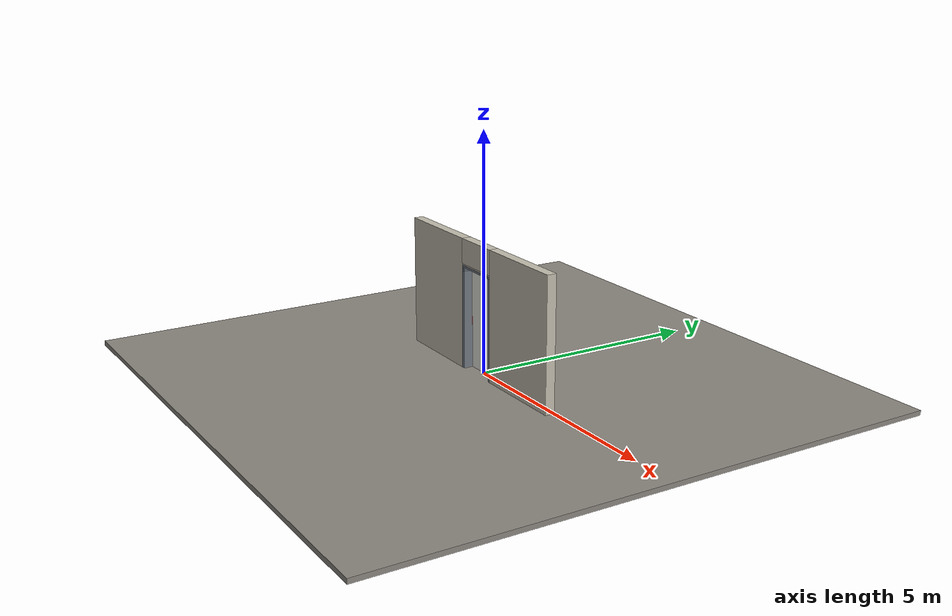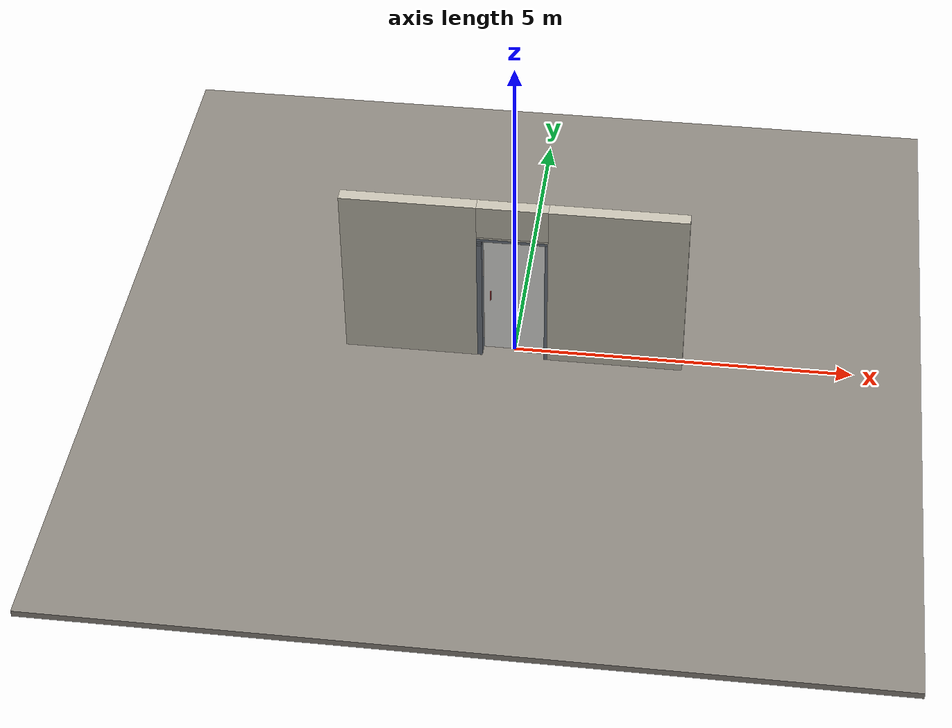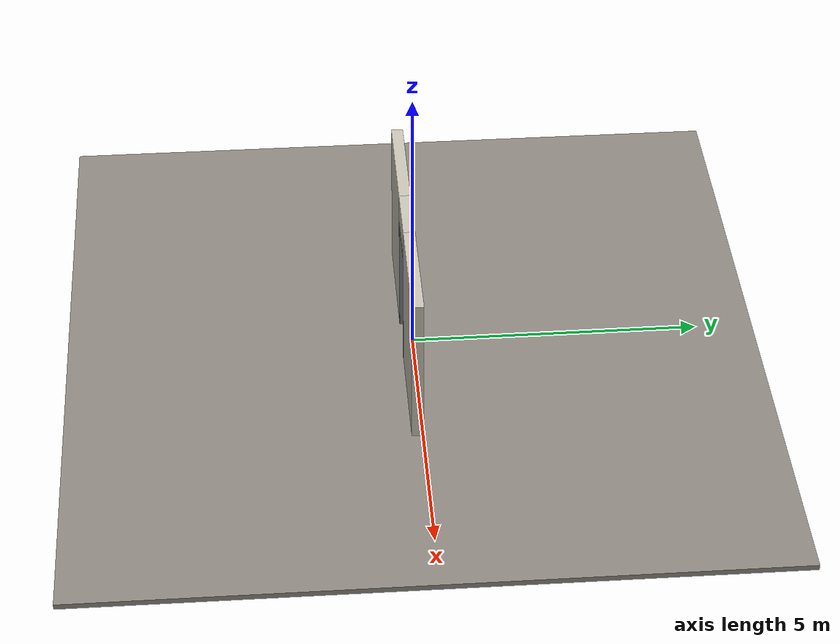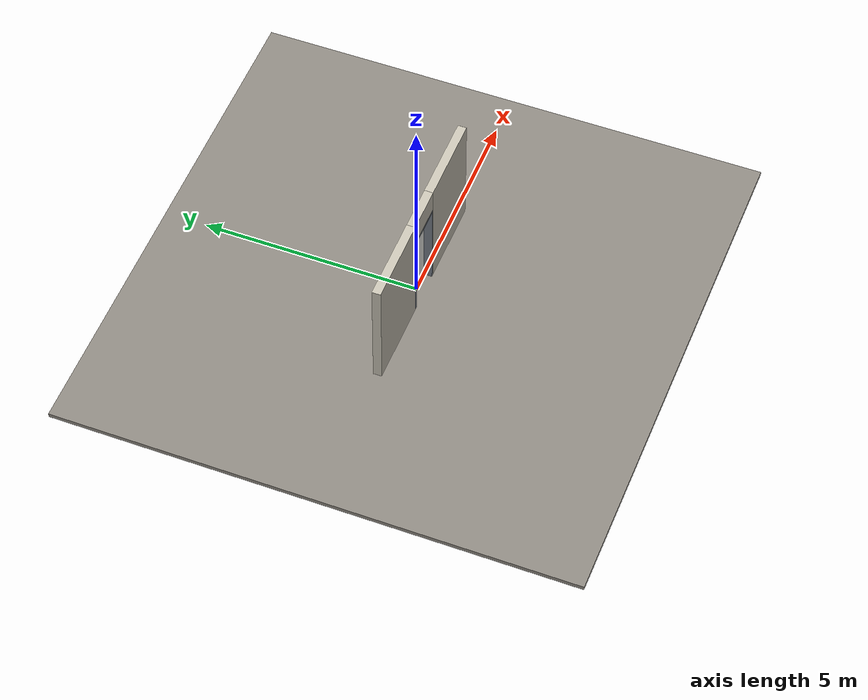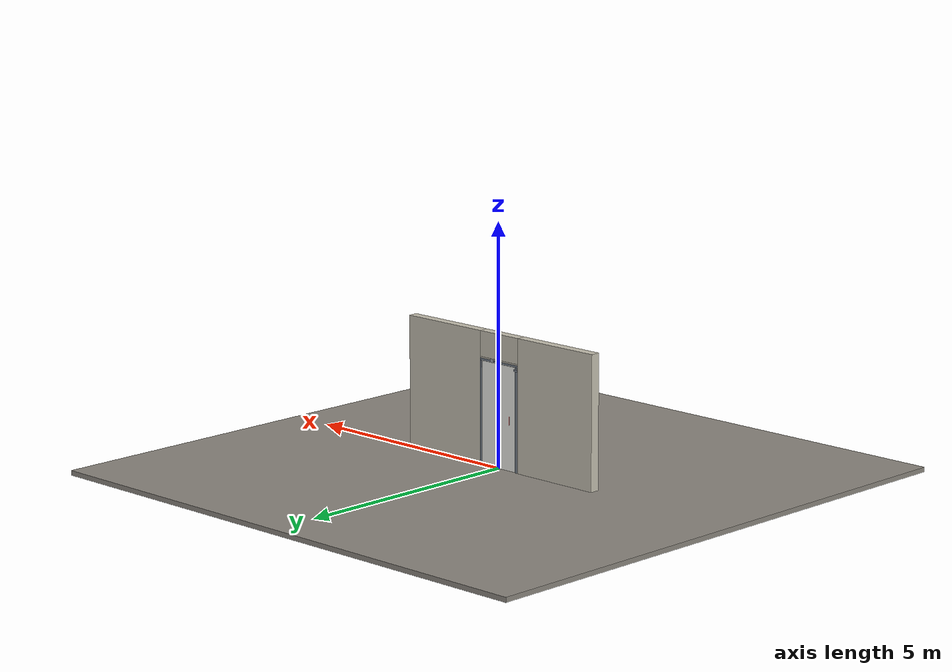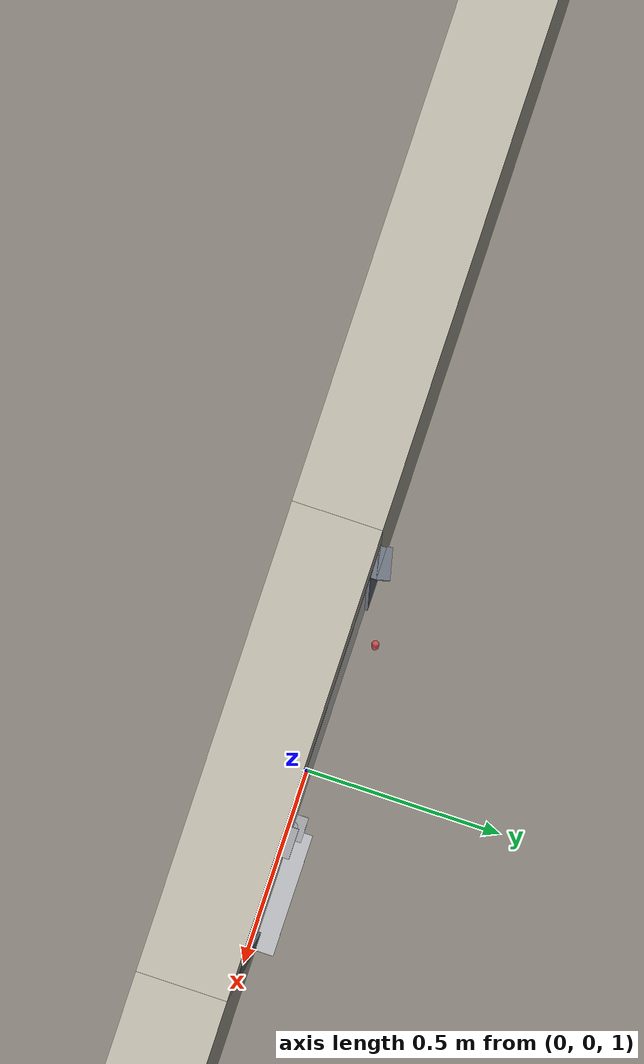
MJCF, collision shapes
<?xml version="1.0" ?>
<mujoco model="db0902_pivot_full">
  <compiler angle="radian" meshdir="../../hardware" texturedir="../../textures" autolimits="true" inertiafromgeom="false"/>
  <option timestep="0.002" integrator="implicitfast" cone="elliptic" impratio="10" noslip_iterations="3">
    <flag multiccd="enable"/>
  </option>
  <size memory="16M"/>
  <default>
    <geom condim="4" solref="0.005 1" solimp="0.95 0.99 0.001"/>
    <joint solreflimit="0.005 1" solimplimit="0.95 0.99 0.001"/>
    <tendon solreflimit="0.005 1"/>
    <equality solref="0.002 1"/>
  </default>
  <visual>
    <headlight ambient="0.4 0.4 0.4" diffuse="0.7 0.7 0.7" specular="0.2 0.2 0.2"/>
    <quality shadowsize="4096"/>
    <map znear="0.01" zfar="60"/>
  </visual>
  <asset>
    <mesh name="pull_1e5d69a91a" file="pull_1e5d69a91a.obj"/>
    <material name="mat_floor" rgba="0.55 0.53 0.5 1" specular="0.2" shininess="0.15" reflectance="0"/>
    <material name="mat_wall" rgba="0.78 0.76 0.7 1" specular="0.2" shininess="0.1" reflectance="0"/>
    <material name="mat_leaf" rgba="0.93 0.93 0.91 1" specular="0.23" shininess="0.33" reflectance="0.02"/>
    <material name="mat_hinge" rgba="0.65 0.66 0.68 1" specular="0.74" shininess="0.5" reflectance="0.36"/>
    <material name="mat_op_stainless" rgba="0.75 0.76 0.77 1" specular="0.8" shininess="0.65" reflectance="0.4"/>
    <material name="mat_bolt" rgba="0.75 0.76 0.77 1" specular="0.8" shininess="0.65" reflectance="0.4"/>
    <material name="mat_frame" rgba="0.45 0.48 0.52 1" specular="0.32" shininess="0.6" reflectance="0.08"/>
    <material name="mat_closer" rgba="0.75 0.76 0.77 1" specular="0.8" shininess="0.65" reflectance="0.4"/>
    <texture name="skybox" type="skybox" builtin="gradient" rgb1="0.6 0.7 0.85" rgb2="0.9 0.92 0.95" width="256" height="256"/>
  </asset>
  <worldbody>
    <light name="sun" pos="1.5 -2.5 4" dir="-0.3 0.5 -0.8" directional="true" diffuse="0.8 0.8 0.8" specular="0.3 0.3 0.3" castshadow="true"/>
    <light name="fill" pos="-1.5 2.5 3" dir="0.3 -0.5 -0.7" directional="true" diffuse="0.35 0.35 0.4" castshadow="false"/>
    <camera name="robot_view" pos="0 -2.726875 1.811325" xyaxes="1 0 0 0 0.26963 0.962964" fovy="52"/>
    <camera name="far_view" pos="0 2.546875 1.811325" xyaxes="-1 0 0 0 -0.26963 0.962964" fovy="52"/>
    <camera name="iso" pos="-2.004025 -2.304975 2.233225" xyaxes="0.741536 -0.670913 0 0.242917 0.268487 0.932151" fovy="46"/>
    <camera name="detail_handle" pos="-0.165 -0.863 1.33" xyaxes="0.97561 0.219512 0 -0.070934 0.315262 0.94635" fovy="38"/>
    <geom name="floor" type="box" size="6 6 0.05" pos="0 0 -0.05" material="mat_floor" group="0" contype="1" conaffinity="1" friction="0.8 0.005 0.0001" density="2400"/>
    <geom name="wall_left" type="box" size="0.9845 0.1 1.373" pos="-1.5155 -0.09 1.373" material="mat_wall" group="0" contype="1" conaffinity="1" friction="0.6 0.005 0.0001" density="800"/>
    <geom name="wall_right" type="box" size="0.9995 0.1 1.373" pos="1.5005 -0.09 1.373" material="mat_wall" group="0" contype="1" conaffinity="1" friction="0.6 0.005 0.0001" density="800"/>
    <geom name="wall_header" type="box" size="0.516 0.1 0.2625" pos="-0.015 -0.09 2.4835" material="mat_wall" group="0" contype="1" conaffinity="1" friction="0.6 0.005 0.0001" density="800"/>
    <geom name="pivot_bottom_socket" type="box" size="0.035 0.035 0.008" pos="0.159 0 -0.002" material="mat_hinge" group="1" contype="0" conaffinity="0" density="7850"/>
    <geom name="pivot_top_bracket" type="box" size="0.035 0.035 0.0355" pos="0.159 0 2.1855" material="mat_hinge" group="1" contype="0" conaffinity="0" density="7850"/>
    <geom name="jamb_hinge" type="box" size="0.0225 0.1 1.073" pos="0.4785 -0.09 1.073" material="mat_frame" group="0" contype="1" conaffinity="1" friction="0.6 0.005 0.0001" density="300"/>
    <geom name="strike_2092_wall_n" type="box" size="0.0375 0.09125 0.019" pos="-0.4935 -0.09875 2.092" material="mat_frame" group="0" contype="1" conaffinity="1" friction="0.6 0.005 0.0001" density="300"/>
    <geom name="strike_2092_wall_p" type="box" size="0.0375 0.008 0.019" pos="-0.4935 0.0155 2.092" material="mat_frame" group="0" contype="1" conaffinity="1" friction="0.6 0.005 0.0001" density="300"/>
    <geom name="strike_2092_ramp" type="box" size="0.0375 0.015403 0.019" pos="-0.496019 0.029979 2.092" quat="0.993439 0 0 0.114365" material="mat_frame" group="0" contype="1" conaffinity="1" friction="0.12 0.005 0.0001" density="300"/>
    <geom name="strike_2092_ramp_n" type="box" size="0.0375 0.015403 0.019" pos="-0.496019 -0.017979 2.092" quat="0.993439 0 0 -0.114365" material="mat_frame" group="0" contype="1" conaffinity="1" friction="0.12 0.005 0.0001" density="300"/>
    <geom name="strike_2092_back" type="box" size="0.0325 0.0075 0.019" pos="-0.4985 0 2.092" material="mat_frame" group="0" contype="1" conaffinity="1" friction="0.6 0.005 0.0001" density="300"/>
    <geom name="jamb_strike_0" type="box" size="0.0375 0.1 1.0365" pos="-0.4935 -0.09 1.0365" material="mat_frame" group="0" contype="1" conaffinity="1" friction="0.6 0.005 0.0001" density="300"/>
    <geom name="jamb_strike_1" type="box" size="0.0375 0.1 0.0175" pos="-0.4935 -0.09 2.1285" material="mat_frame" group="0" contype="1" conaffinity="1" friction="0.6 0.005 0.0001" density="300"/>
    <geom name="jamb_head" type="box" size="0.516 0.1 0.0225" pos="-0.015 -0.09 2.1685" material="mat_frame" group="0" contype="1" conaffinity="1" friction="0.6 0.005 0.0001" density="300"/>
    <geom name="head_stud" type="box" size="0.516 0.1 0.015" pos="-0.015 -0.09 2.206" material="mat_wall" group="0" contype="1" conaffinity="1" friction="0.6 0.005 0.0001" density="500"/>
    <geom name="floor_spring_cover" type="box" size="0.17 0.06 0.002" pos="0.336 0 0.002" material="mat_closer" group="1" contype="0" conaffinity="0" density="7900"/>
    <site name="approach_point" pos="0 -1.5 0" quat="1 0 0 0" size="0.05" rgba="0.2 0.9 0.2 0.5" group="4"/>
    <site name="goal_point" pos="0 1.5 0" quat="1 0 0 0" size="0.05" rgba="0.2 0.9 0.2 0.5" group="4"/>
    <site name="door_plane_center" pos="0 0 1.073" quat="1 0 0 0" size="0.02" rgba="0.2 0.9 0.2 0.5" group="4"/>
    <body name="leaf" pos="0.456 0 0">
      <inertial pos="-0.459264 0 1.074767" mass="96.189498" quat="0.499937 0.499937 0.500063 -0.500063" diaginertia="6.540627328 36.214739379 42.748652133"/>
      <joint name="leaf_hinge" type="hinge" axis="0 0 -1" pos="-0.297 0 0" limited="true" range="0 1.570796" solreflimit="0.02 1" damping="8.252861" frictionloss="1.664785" stiffness="20.887495" springref="-1.806823" armature="0.02"/>
      <geom name="leaf_slab" type="box" size="0.45 0.003 1.067" pos="-0.456 0 1.075" material="mat_leaf" group="0" contype="1" conaffinity="1" friction="0.45 0.005 0.0001" density="1"/>
      <geom name="pivot_bottom" type="cylinder" size="0.014 0.004" pos="-0.297 0 0.003" material="mat_hinge" group="1" contype="0" conaffinity="0" density="7850"/>
      <geom name="pivot_top" type="cylinder" size="0.014 0.004" pos="-0.297 0 2.146" material="mat_hinge" group="1" contype="0" conaffinity="0" density="7850"/>
      <geom name="leaf_pull_n" type="mesh" mesh="pull_1e5d69a91a" pos="-0.801 -0.003 1.05" quat="0 0 -0.707107 0.707107" material="mat_op_stainless" group="1" contype="0" conaffinity="0" density="3000"/>
      <geom name="leaf_pull_col_n" type="capsule" size="0.0095 0.08" pos="-0.801 -0.063 1.05" material="mat_op_stainless" group="3" contype="1" conaffinity="1" rgba="0.8 0.3 0.3 0.25" friction="0.7 0.01 0.0001" density="3000"/>
      <geom name="leaf_pull_p" type="mesh" mesh="pull_1e5d69a91a" pos="-0.801 0.003 1.05" quat="0 0 0.707107 0.707107" material="mat_op_stainless" group="1" contype="0" conaffinity="0" density="3000"/>
      <geom name="leaf_pull_col_p" type="capsule" size="0.0095 0.08" pos="-0.801 0.063 1.05" material="mat_op_stainless" group="3" contype="1" conaffinity="1" rgba="0.8 0.3 0.3 0.25" friction="0.7 0.01 0.0001" density="3000"/>
      <geom name="leaf_mag_catch_faceplate" type="box" size="0.0006 0.001 0.029" pos="-0.9054 0 2.092" material="mat_bolt" group="1" contype="0" conaffinity="0" density="8500"/>
      <site name="leaf_pull_grip_n" pos="-0.801 -0.063 1.05" quat="1 0 0 0" size="0.012" rgba="0.2 0.9 0.2 0.5" group="4"/>
      <site name="leaf_pull_grip_p" pos="-0.801 0.063 1.05" quat="1 0 0 0" size="0.012" rgba="0.2 0.9 0.2 0.5" group="4"/>
      <site name="leaf_edge_mid" pos="-0.906 0 1.067" quat="1 0 0 0" size="0.02" rgba="0.2 0.9 0.2 0.5" group="4"/>
      <body name="leaf_mag_catch" pos="-0.906 0 2.092">
        <inertial pos="0.012 0 0" mass="0.030762" quat="0 0 -0.707107 0.707107" diaginertia="0.000000526 0.000002949 0.000002949"/>
        <joint name="leaf_mag_catch_slide" type="slide" axis="1 0 0" limited="true" range="0 0.006" damping="2" frictionloss="0.3" stiffness="5833.333333" springref="-0.006" armature="0.1"/>
        <geom name="leaf_mag_catch_capsule" type="capsule" size="0.006 0.012" pos="0.012 0 0" quat="0.707107 0 -0.707107 0" material="mat_bolt" group="0" contype="1" conaffinity="1" friction="0.2 0.005 0.0001" density="8500"/>
      </body>
    </body>
  </worldbody>
  <sensor>
    <jointpos name="leaf_hinge_pos" joint="leaf_hinge"/>
    <jointvel name="leaf_hinge_vel" joint="leaf_hinge"/>
    <jointpos name="leaf_mag_catch_slide_pos" joint="leaf_mag_catch_slide"/>
    <jointvel name="leaf_mag_catch_slide_vel" joint="leaf_mag_catch_slide"/>
  </sensor>
</mujoco>
